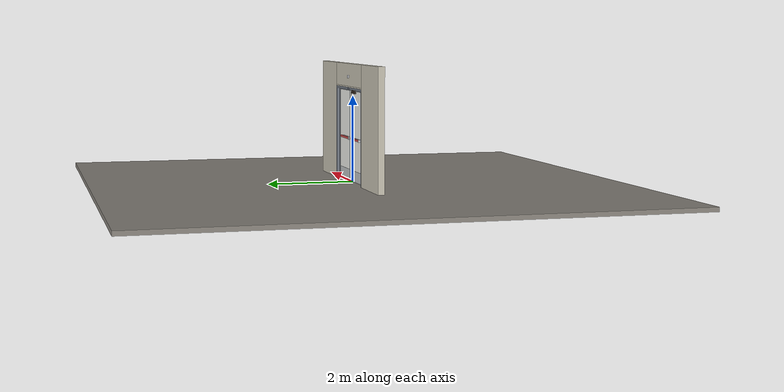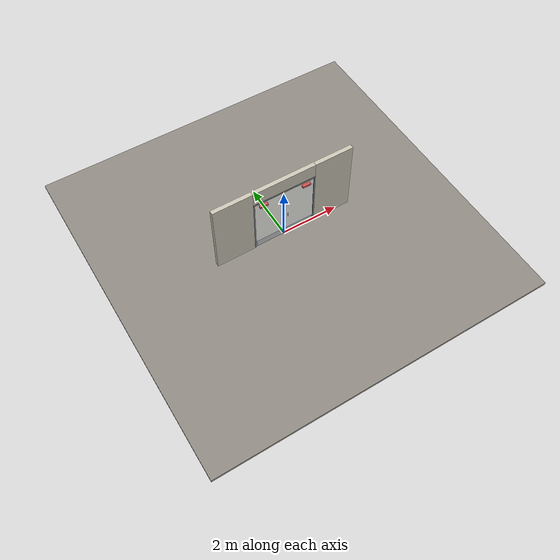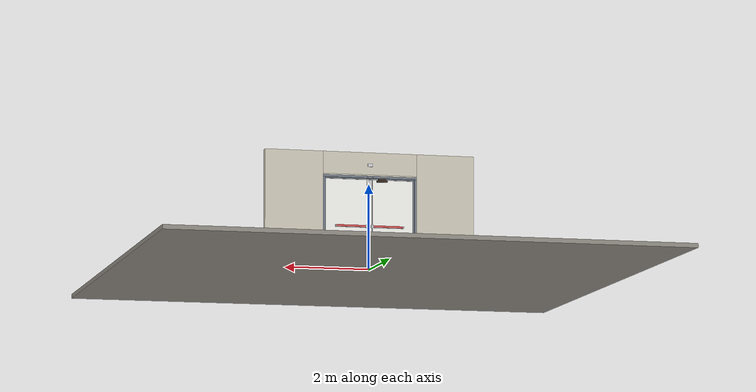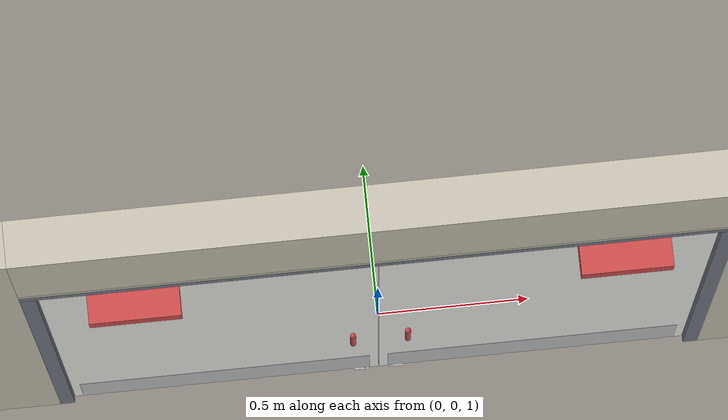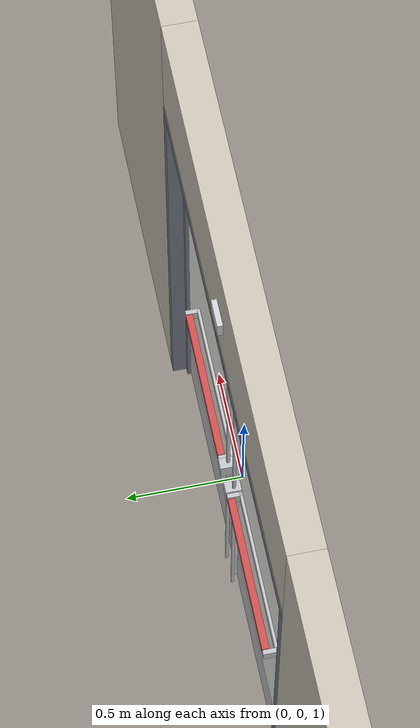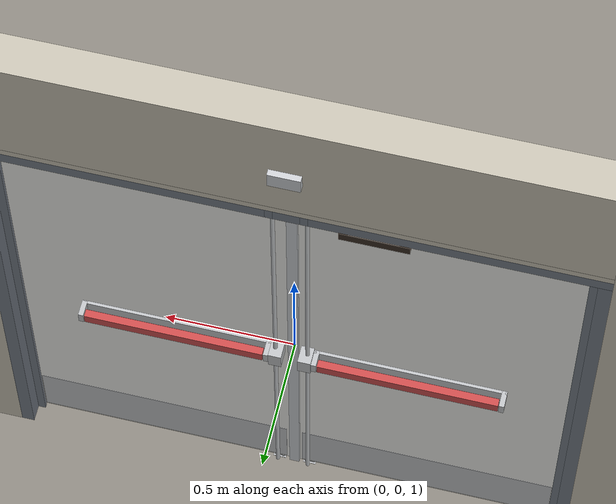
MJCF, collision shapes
<?xml version="1.0" ?>
<mujoco model="db0183_swing_double_full">
  <compiler angle="radian" meshdir="../../hardware" texturedir="../../textures" autolimits="true" inertiafromgeom="false"/>
  <option timestep="0.002" integrator="implicitfast" cone="elliptic" impratio="10" noslip_iterations="3">
    <flag multiccd="enable"/>
  </option>
  <size memory="16M"/>
  <default>
    <geom condim="4" solref="0.005 1" solimp="0.95 0.99 0.001"/>
    <joint solreflimit="0.005 1" solimplimit="0.95 0.99 0.001"/>
    <tendon solreflimit="0.005 1"/>
    <equality solref="0.002 1"/>
  </default>
  <visual>
    <headlight ambient="0.4 0.4 0.4" diffuse="0.7 0.7 0.7" specular="0.2 0.2 0.2"/>
    <quality shadowsize="4096"/>
    <map znear="0.01" zfar="60"/>
  </visual>
  <asset>
    <mesh name="closer_body_fdc4667657" file="closer_body_fdc4667657.obj"/>
    <mesh name="exit_sign_a6449bfa2c" file="exit_sign_a6449bfa2c.obj"/>
    <mesh name="hinge_e22b26c0c1" file="hinge_e22b26c0c1.obj"/>
    <mesh name="hinge_jamb_e1d088f8dc" file="hinge_jamb_e1d088f8dc.obj"/>
    <mesh name="pull_1e5d69a91a" file="pull_1e5d69a91a.obj"/>
    <mesh name="touchbar_pad_53c3bea3f4" file="touchbar_pad_53c3bea3f4.obj"/>
    <material name="mat_floor" rgba="0.55 0.53 0.5 1" specular="0.2" shininess="0.15" reflectance="0"/>
    <material name="mat_wall" rgba="0.78 0.76 0.7 1" specular="0.2" shininess="0.1" reflectance="0"/>
    <material name="mat_leaf_a" rgba="0.93 0.93 0.91 1" specular="0.2" shininess="0.35" reflectance="0"/>
    <material name="mat_hinge" rgba="0.65 0.66 0.68 1" specular="0.74" shininess="0.5" reflectance="0.36"/>
    <material name="mat_op_stainless" rgba="0.75 0.76 0.77 1" specular="0.8" shininess="0.65" reflectance="0.4"/>
    <material name="mat_bolt" rgba="0.75 0.76 0.77 1" specular="0.8" shininess="0.65" reflectance="0.4"/>
    <material name="mat_maglock" rgba="0.22 0.17 0.13 1" specular="0.8" shininess="0.6" reflectance="0.4"/>
    <material name="mat_closer" rgba="0.22 0.17 0.13 1" specular="0.8" shininess="0.6" reflectance="0.4"/>
    <material name="mat_kick" rgba="0.75 0.76 0.77 1" specular="0.8" shininess="0.65" reflectance="0.4"/>
    <material name="mat_exit_sign" rgba="0.85 0.1 0.1 1" specular="0.2" shininess="0.6" reflectance="0"/>
    <material name="mat_sign_bracket" rgba="0.8 0.81 0.83 1" specular="0.8" shininess="0.6" reflectance="0.4"/>
    <material name="mat_leaf_b" rgba="0.93 0.93 0.91 1" specular="0.2" shininess="0.35" reflectance="0"/>
    <material name="mat_frame" rgba="0.45 0.48 0.52 1" specular="0.32" shininess="0.6" reflectance="0.08"/>
    <material name="mat_astragal" rgba="0.8 0.81 0.83 1" specular="0.8" shininess="0.6" reflectance="0.4"/>
    <texture name="skybox" type="skybox" builtin="gradient" rgb1="0.6 0.7 0.85" rgb2="0.9 0.92 0.95" width="256" height="256"/>
  </asset>
  <worldbody>
    <light name="sun" pos="1.5 -2.5 4" dir="-0.3 0.5 -0.8" directional="true" diffuse="0.8 0.8 0.8" specular="0.3 0.3 0.3" castshadow="true"/>
    <light name="fill" pos="-1.5 2.5 3" dir="0.3 -0.5 -0.7" directional="true" diffuse="0.35 0.35 0.4" castshadow="false"/>
    <camera name="robot_view" pos="0 -2.607312 1.812087" xyaxes="1 0 0 0 0.26963 0.962964" fovy="52"/>
    <camera name="far_view" pos="0 2.668312 1.812087" xyaxes="-1 0 0 0 -0.26963 0.962964" fovy="52"/>
    <camera name="iso" pos="-2.004737 -2.185262 2.234138" xyaxes="0.741536 -0.670913 0 0.242917 0.268487 0.932151" fovy="46"/>
    <camera name="detail_handle" pos="0.0885 -0.882 1.296" xyaxes="0.97561 0.219512 0 -0.070934 0.315262 0.94635" fovy="38"/>
    <geom name="floor" type="box" size="6 6 0.05" pos="0 0 -0.05" material="mat_floor" group="0" contype="1" conaffinity="1" friction="0.8 0.005 0.0001" density="2400"/>
    <geom name="wall_left" type="box" size="0.68925 0.0725 1.3735" pos="-1.81075 0.0305 1.3735" material="mat_wall" group="0" contype="1" conaffinity="1" friction="0.6 0.005 0.0001" density="800"/>
    <geom name="wall_right" type="box" size="0.68925 0.0725 1.3735" pos="1.81075 0.0305 1.3735" material="mat_wall" group="0" contype="1" conaffinity="1" friction="0.6 0.005 0.0001" density="800"/>
    <geom name="wall_header" type="box" size="1.1215 0.0725 0.26" pos="0 0.0305 2.487" material="mat_wall" group="0" contype="1" conaffinity="1" friction="0.6 0.005 0.0001" density="800"/>
    <geom name="hinge_0_jamb" type="mesh" mesh="hinge_jamb_e1d088f8dc" pos="-1.0685 -0.029 0.266" material="mat_hinge" group="1" contype="0" conaffinity="0" density="7850"/>
    <geom name="hinge_1_jamb" type="mesh" mesh="hinge_jamb_e1d088f8dc" pos="-1.0685 -0.029 1.0795" material="mat_hinge" group="1" contype="0" conaffinity="0" density="7850"/>
    <geom name="hinge_2_jamb" type="mesh" mesh="hinge_jamb_e1d088f8dc" pos="-1.0685 -0.029 1.963" material="mat_hinge" group="1" contype="0" conaffinity="0" density="7850"/>
    <geom name="leaf_a_bottom_strike_plate" type="box" size="0.0255 0.0255 0.00075" pos="-0.0615 0 0.00075" material="mat_bolt" group="0" contype="1" conaffinity="1" friction="0.6 0.005 0.0001" density="7850"/>
    <geom name="leaf_a_bottom_strike_p" type="box" size="0.0215 0.004 0.00575" pos="-0.0615 0.0145 0.00725" material="mat_bolt" group="0" contype="1" conaffinity="1" friction="0.6 0.005 0.0001" density="7850"/>
    <geom name="leaf_a_bottom_strike_n" type="box" size="0.0215 0.004 0.00575" pos="-0.0615 -0.0145 0.00725" material="mat_bolt" group="0" contype="1" conaffinity="1" friction="0.6 0.005 0.0001" density="7850"/>
    <geom name="leaf_a_bottom_strike_e" type="box" size="0.004 0.0215 0.00575" pos="-0.047 0 0.00725" material="mat_bolt" group="0" contype="1" conaffinity="1" friction="0.6 0.005 0.0001" density="7850"/>
    <geom name="leaf_a_maglock_body" type="box" size="0.125 0.025 0.02" pos="-0.3015 0.057 2.082" material="mat_maglock" group="0" contype="1" conaffinity="1" friction="0.6 0.005 0.0001" density="2000"/>
    <geom name="leaf_a_maglock_bracket" type="box" size="0.09 0.025 0.0225" pos="-0.3015 0.057 2.1245" material="mat_maglock" group="1" contype="0" conaffinity="0" density="7850"/>
    <geom name="exit_sign" type="mesh" mesh="exit_sign_a6449bfa2c" pos="0 0.15 2.447" material="mat_exit_sign" group="2" contype="0" conaffinity="0" density="500"/>
    <geom name="exit_sign_bracket" type="box" size="0.05775 0.0115 0.035" pos="0 0.114 2.447" material="mat_sign_bracket" group="2" contype="0" conaffinity="0" density="7850"/>
    <geom name="hinge_0_jamb_2" type="mesh" mesh="hinge_jamb_e1d088f8dc" pos="1.0685 -0.029 0.266" quat="0 0 1 0" material="mat_hinge" group="1" contype="0" conaffinity="0" density="7850"/>
    <geom name="hinge_1_jamb_2" type="mesh" mesh="hinge_jamb_e1d088f8dc" pos="1.0685 -0.029 1.0795" quat="0 0 1 0" material="mat_hinge" group="1" contype="0" conaffinity="0" density="7850"/>
    <geom name="hinge_2_jamb_2" type="mesh" mesh="hinge_jamb_e1d088f8dc" pos="1.0685 -0.029 1.963" quat="0 0 1 0" material="mat_hinge" group="1" contype="0" conaffinity="0" density="7850"/>
    <geom name="leaf_b_bottom_strike_plate" type="box" size="0.0255 0.0255 0.00075" pos="0.0615 0 0.00075" material="mat_bolt" group="0" contype="1" conaffinity="1" friction="0.6 0.005 0.0001" density="7850"/>
    <geom name="leaf_b_bottom_strike_p" type="box" size="0.0215 0.004 0.00575" pos="0.0615 0.0145 0.00725" material="mat_bolt" group="0" contype="1" conaffinity="1" friction="0.6 0.005 0.0001" density="7850"/>
    <geom name="leaf_b_bottom_strike_n" type="box" size="0.0215 0.004 0.00575" pos="0.0615 -0.0145 0.00725" material="mat_bolt" group="0" contype="1" conaffinity="1" friction="0.6 0.005 0.0001" density="7850"/>
    <geom name="leaf_b_bottom_strike_e" type="box" size="0.004 0.0215 0.00575" pos="0.047 0 0.00725" material="mat_bolt" group="0" contype="1" conaffinity="1" friction="0.6 0.005 0.0001" density="7850"/>
    <geom name="jamb_l" type="box" size="0.025 0.0725 1.0735" pos="-1.0965 0.0305 1.0735" material="mat_frame" group="0" contype="1" conaffinity="1" friction="0.6 0.005 0.0001" density="300"/>
    <geom name="jamb_r" type="box" size="0.025 0.0725 1.0735" pos="1.0965 0.0305 1.0735" material="mat_frame" group="0" contype="1" conaffinity="1" friction="0.6 0.005 0.0001" density="300"/>
    <geom name="jamb_head_pwall_-61_n" type="box" size="0.0135 0.0155 0.025" pos="-0.0615 -0.0265 2.172" material="mat_frame" group="0" contype="1" conaffinity="1" friction="0.6 0.005 0.0001" density="300"/>
    <geom name="jamb_head_pwall_-61_p" type="box" size="0.0135 0.046 0.025" pos="-0.0615 0.057 2.172" material="mat_frame" group="0" contype="1" conaffinity="1" friction="0.6 0.005 0.0001" density="300"/>
    <geom name="jamb_head_pback_-61" type="box" size="0.0135 0.011 0.0135" pos="-0.0615 0 2.1835" material="mat_frame" group="0" contype="1" conaffinity="1" friction="0.6 0.005 0.0001" density="300"/>
    <geom name="jamb_head_pwall_61_n" type="box" size="0.0135 0.0155 0.025" pos="0.0615 -0.0265 2.172" material="mat_frame" group="0" contype="1" conaffinity="1" friction="0.6 0.005 0.0001" density="300"/>
    <geom name="jamb_head_pwall_61_p" type="box" size="0.0135 0.046 0.025" pos="0.0615 0.057 2.172" material="mat_frame" group="0" contype="1" conaffinity="1" friction="0.6 0.005 0.0001" density="300"/>
    <geom name="jamb_head_pback_61" type="box" size="0.0135 0.011 0.0135" pos="0.0615 0 2.1835" material="mat_frame" group="0" contype="1" conaffinity="1" friction="0.6 0.005 0.0001" density="300"/>
    <geom name="jamb_head_0" type="box" size="0.52325 0.0725 0.025" pos="-0.59825 0.0305 2.172" material="mat_frame" group="0" contype="1" conaffinity="1" friction="0.6 0.005 0.0001" density="300"/>
    <geom name="jamb_head_1" type="box" size="0.048 0.0725 0.025" pos="0 0.0305 2.172" material="mat_frame" group="0" contype="1" conaffinity="1" friction="0.6 0.005 0.0001" density="300"/>
    <geom name="jamb_head_2" type="box" size="0.52325 0.0725 0.025" pos="0.59825 0.0305 2.172" material="mat_frame" group="0" contype="1" conaffinity="1" friction="0.6 0.005 0.0001" density="300"/>
    <geom name="head_stud" type="box" size="1.1215 0.0725 0.015" pos="0 0.0305 2.212" material="mat_wall" group="0" contype="1" conaffinity="1" friction="0.6 0.005 0.0001" density="500"/>
    <geom name="stop_l" type="box" size="0.015 0.008 1.0735" pos="-1.0565 0.0305 1.0735" material="mat_frame" group="0" contype="1" conaffinity="1" friction="0.6 0.005 0.0001" density="300"/>
    <geom name="stop_r" type="box" size="0.015 0.008 1.0735" pos="1.0565 0.0305 1.0735" material="mat_frame" group="0" contype="1" conaffinity="1" friction="0.6 0.005 0.0001" density="300"/>
    <geom name="stop_head" type="box" size="1.0715 0.008 0.015" pos="0 0.0305 2.132" material="mat_frame" group="0" contype="1" conaffinity="1" friction="0.6 0.005 0.0001" density="300"/>
    <site name="approach_point" pos="0 -1.5 0" quat="1 0 0 0" size="0.05" rgba="0.2 0.9 0.2 0.5" group="4"/>
    <site name="goal_point" pos="0 1.5 0" quat="1 0 0 0" size="0.05" rgba="0.2 0.9 0.2 0.5" group="4"/>
    <site name="door_plane_center" pos="0 0 1.0735" quat="1 0 0 0" size="0.02" rgba="0.2 0.9 0.2 0.5" group="4"/>
    <site name="approach_point_2" pos="0 -1.5 0" quat="1 0 0 0" size="0.05" rgba="0.2 0.9 0.2 0.5" group="4"/>
    <site name="goal_point_2" pos="0 1.5 0" quat="1 0 0 0" size="0.05" rgba="0.2 0.9 0.2 0.5" group="4"/>
    <site name="door_plane_center_2" pos="0 0 1.0735" quat="1 0 0 0" size="0.02" rgba="0.2 0.9 0.2 0.5" group="4"/>
    <site name="approach_point_3" pos="0 -1.5 0" quat="1 0 0 0" size="0.05" rgba="0.2 0.9 0.2 0.5" group="4"/>
    <site name="goal_point_3" pos="0 1.5 0" quat="1 0 0 0" size="0.05" rgba="0.2 0.9 0.2 0.5" group="4"/>
    <site name="door_plane_center_3" pos="0 0 1.0735" quat="1 0 0 0" size="0.02" rgba="0.2 0.9 0.2 0.5" group="4"/>
    <body name="leaf_a" pos="-1.0715 0 0">
      <inertial pos="0.518158 -0.009915 1.184296" mass="56.438035" quat="-0.489711 0.462131 0.525788 0.519774" diaginertia="5.262560014 28.173270011 33.327995523"/>
      <joint name="leaf_a_hinge" type="hinge" axis="0 0 -1" pos="0.003 -0.029 0" limited="true" range="0 1.570796" solreflimit="0.02 1" damping="12.49954" frictionloss="3.958534" stiffness="13.190762" springref="-2.424424" armature="0.02"/>
      <geom name="leaf_a_slab" type="box" size="0.5335 0.022 1.0635" pos="0.5365 0 1.0795" material="mat_leaf_a" group="0" contype="1" conaffinity="1" friction="0.4 0.005 0.0001" density="1"/>
      <geom name="hinge_0" type="mesh" mesh="hinge_e22b26c0c1" pos="0.003 -0.029 0.266" material="mat_hinge" group="1" contype="0" conaffinity="0" density="7850"/>
      <geom name="hinge_1" type="mesh" mesh="hinge_e22b26c0c1" pos="0.003 -0.029 1.0795" material="mat_hinge" group="1" contype="0" conaffinity="0" density="7850"/>
      <geom name="hinge_2" type="mesh" mesh="hinge_e22b26c0c1" pos="0.003 -0.029 1.963" material="mat_hinge" group="1" contype="0" conaffinity="0" density="7850"/>
      <geom name="leaf_a_exit_device_rail" type="box" size="0.366775 0.006 0.025" pos="0.623225 0.028 1.016" material="mat_op_stainless" group="0" contype="1" conaffinity="1" friction="0.6 0.005 0.0001" density="3000"/>
      <geom name="leaf_a_exit_device_rail_end_n" type="box" size="0.01 0.0325 0.025" pos="0.26645 0.0545 1.016" material="mat_op_stainless" group="0" contype="1" conaffinity="1" friction="0.6 0.005 0.0001" density="3000"/>
      <geom name="leaf_a_exit_device_rail_end_p" type="box" size="0.01 0.0325 0.025" pos="0.98 0.0545 1.016" material="mat_op_stainless" group="0" contype="1" conaffinity="1" friction="0.6 0.005 0.0001" density="3000"/>
      <geom name="leaf_a_exit_device_case" type="box" size="0.025 0.034125 0.0375" pos="1.015 0.056125 1.016" material="mat_op_stainless" group="0" contype="1" conaffinity="1" friction="0.6 0.005 0.0001" density="3000"/>
      <geom name="leaf_a_exit_device_rod_top" type="cylinder" size="0.008 0.52975" pos="1.01 0.052 1.58325" material="mat_op_stainless" group="1" contype="0" conaffinity="0" density="7850"/>
      <geom name="leaf_a_exit_device_rod_bot" type="cylinder" size="0.008 0.46625" pos="1.01 0.052 0.51225" material="mat_op_stainless" group="1" contype="0" conaffinity="0" density="7850"/>
      <geom name="leaf_a_far_pull_n" type="mesh" mesh="pull_1e5d69a91a" pos="0.98 -0.022 1.016" quat="0.707107 0.707107 0 0" material="mat_op_stainless" group="1" contype="0" conaffinity="0" density="3000"/>
      <geom name="leaf_a_far_pull_col_n" type="capsule" size="0.0095 0.08" pos="0.98 -0.082 1.016" material="mat_op_stainless" group="3" contype="1" conaffinity="1" rgba="0.8 0.3 0.3 0.25" friction="0.7 0.01 0.0001" density="3000"/>
      <geom name="leaf_a_maglock_armature" type="box" size="0.09 0.005 0.02" pos="0.77 0.027 2.082" material="mat_maglock" group="1" contype="0" conaffinity="0" density="7800"/>
      <geom name="closer_body" type="mesh" mesh="closer_body_fdc4667657" pos="0.3 -0.022 2.047" quat="0.707107 0.707107 0 0" material="mat_closer" group="1" contype="0" conaffinity="0" density="2000"/>
      <geom name="closer_body_col" type="box" size="0.145 0.05 0.035" pos="0.3 -0.072 2.047" material="mat_closer" group="3" contype="1" conaffinity="1" rgba="0.8 0.3 0.3 0.25" friction="0.6 0.005 0.0001" density="2000"/>
      <geom name="kick_plate_n" type="box" size="0.5035 0.0008 0.125" pos="0.5365 -0.0228 0.151" material="mat_kick" group="2" contype="0" conaffinity="0" density="7900"/>
      <geom name="kick_plate_p" type="box" size="0.5035 0.0008 0.125" pos="0.5365 0.0228 0.151" material="mat_kick" group="2" contype="0" conaffinity="0" density="7900"/>
      <site name="leaf_a_far_pull_grip_n" pos="0.98 -0.082 1.016" quat="1 0 0 0" size="0.012" rgba="0.2 0.9 0.2 0.5" group="4"/>
      <site name="leaf_a_edge_mid" pos="1.07 0 1.0635" quat="1 0 0 0" size="0.02" rgba="0.2 0.9 0.2 0.5" group="4"/>
      <body name="leaf_a_exit_device" pos="0.623225 0.022 1.016">
        <inertial pos="0 0.05 0" mass="5.569155" quat="0.707107 -0.707107 0 0" diaginertia="0.001357482 0.219807588 0.220329696"/>
        <joint name="leaf_a_exit_device_slide" type="slide" axis="0 -1 0" limited="true" range="0 0.016" damping="178.961638" frictionloss="0.5" stiffness="1400" springref="-0.015714" armature="0.15"/>
        <geom name="leaf_a_exit_device_pad" type="mesh" mesh="touchbar_pad_53c3bea3f4" pos="0 0 0" quat="-0.707107 0.707107 0 0" material="mat_op_stainless" group="1" contype="0" conaffinity="0" density="3000"/>
        <geom name="leaf_a_exit_device_pad_col" type="box" size="0.343775 0.015 0.0225" pos="0 0.05 0" material="mat_op_stainless" group="3" contype="1" conaffinity="1" rgba="0.8 0.3 0.3 0.25" friction="0.8 0.01 0.0001" density="3000"/>
        <site name="leaf_a_exit_device_push" pos="0 0.065 0" quat="1 0 0 0" size="0.015" rgba="0.2 0.9 0.2 0.5" group="4"/>
      </body>
      <body name="leaf_a_top_latch" pos="1.01 0 2.143">
        <inertial pos="0 0 -0.0155" mass="0.151026" quat="0.707107 0 0.707107 0" diaginertia="0.00000654 0.000053442 0.000053442"/>
        <joint name="leaf_a_top_latch_slide" type="slide" axis="0 0 -1" limited="true" range="0 0.019" damping="2" frictionloss="0.3" stiffness="800" springref="-0.01" armature="0.1"/>
        <geom name="leaf_a_top_latch_capsule" type="capsule" size="0.0095 0.025" pos="0 0 -0.0155" material="mat_bolt" group="0" contype="1" conaffinity="1" friction="0.2 0.005 0.0001" density="8500"/>
      </body>
      <body name="leaf_a_bottom_latch" pos="1.01 0 0.03">
        <inertial pos="0 0 0.012" mass="0.167896" quat="0.707107 0 0.707107 0" diaginertia="0.000007301 0.000072388 0.000072388"/>
        <joint name="leaf_a_bottom_latch_slide" type="slide" axis="0 0 1" limited="true" range="0 0.026" damping="2" frictionloss="0.3" stiffness="800" springref="-0.01" armature="0.1"/>
        <geom name="leaf_a_bottom_latch_capsule" type="capsule" size="0.0095 0.0285" pos="0 0 0.012" material="mat_bolt" group="0" contype="1" conaffinity="1" friction="0.2 0.005 0.0001" density="8500"/>
      </body>
    </body>
    <body name="leaf_b" pos="1.0715 0 0">
      <inertial pos="-0.539924 -0.008475 1.173488" mass="57.091438" quat="0.521465 -0.529033 -0.458512 -0.487816" diaginertia="5.782461712 28.136364921 33.812957921"/>
      <joint name="leaf_b_hinge" type="hinge" axis="0 0 1" pos="-0.003 -0.029 0" limited="true" range="0 1.570796" solreflimit="0.02 1" damping="12.49954" frictionloss="3.958534" stiffness="13.190762" springref="-2.424424" armature="0.02"/>
      <geom name="leaf_b_slab" type="box" size="0.5335 0.022 1.0635" pos="-0.5365 0 1.0795" material="mat_leaf_b" group="0" contype="1" conaffinity="1" friction="0.4 0.005 0.0001" density="1"/>
      <geom name="hinge_0_2" type="mesh" mesh="hinge_e22b26c0c1" pos="-0.003 -0.029 0.266" quat="0 0 1 0" material="mat_hinge" group="1" contype="0" conaffinity="0" density="7850"/>
      <geom name="hinge_1_2" type="mesh" mesh="hinge_e22b26c0c1" pos="-0.003 -0.029 1.0795" quat="0 0 1 0" material="mat_hinge" group="1" contype="0" conaffinity="0" density="7850"/>
      <geom name="hinge_2_2" type="mesh" mesh="hinge_e22b26c0c1" pos="-0.003 -0.029 1.963" quat="0 0 1 0" material="mat_hinge" group="1" contype="0" conaffinity="0" density="7850"/>
      <geom name="leaf_b_exit_device_rail" type="box" size="0.366775 0.006 0.025" pos="-0.623225 0.028 1.016" material="mat_op_stainless" group="0" contype="1" conaffinity="1" friction="0.6 0.005 0.0001" density="3000"/>
      <geom name="leaf_b_exit_device_rail_end_n" type="box" size="0.01 0.0325 0.025" pos="-0.98 0.0545 1.016" material="mat_op_stainless" group="0" contype="1" conaffinity="1" friction="0.6 0.005 0.0001" density="3000"/>
      <geom name="leaf_b_exit_device_rail_end_p" type="box" size="0.01 0.0325 0.025" pos="-0.26645 0.0545 1.016" material="mat_op_stainless" group="0" contype="1" conaffinity="1" friction="0.6 0.005 0.0001" density="3000"/>
      <geom name="leaf_b_exit_device_case" type="box" size="0.025 0.034125 0.0375" pos="-1.015 0.056125 1.016" material="mat_op_stainless" group="0" contype="1" conaffinity="1" friction="0.6 0.005 0.0001" density="3000"/>
      <geom name="leaf_b_exit_device_rod_top" type="cylinder" size="0.008 0.52975" pos="-1.01 0.052 1.58325" material="mat_op_stainless" group="1" contype="0" conaffinity="0" density="7850"/>
      <geom name="leaf_b_exit_device_rod_bot" type="cylinder" size="0.008 0.46625" pos="-1.01 0.052 0.51225" material="mat_op_stainless" group="1" contype="0" conaffinity="0" density="7850"/>
      <geom name="leaf_b_far_pull_n" type="mesh" mesh="pull_1e5d69a91a" pos="-0.98 -0.022 1.016" quat="0 0 -0.707107 0.707107" material="mat_op_stainless" group="1" contype="0" conaffinity="0" density="3000"/>
      <geom name="leaf_b_far_pull_col_n" type="capsule" size="0.0095 0.08" pos="-0.98 -0.082 1.016" material="mat_op_stainless" group="3" contype="1" conaffinity="1" rgba="0.8 0.3 0.3 0.25" friction="0.7 0.01 0.0001" density="3000"/>
      <geom name="closer_body_2" type="mesh" mesh="closer_body_fdc4667657" pos="-0.3 -0.022 2.047" quat="0 0 -0.707107 0.707107" material="mat_closer" group="1" contype="0" conaffinity="0" density="2000"/>
      <geom name="closer_body_col_2" type="box" size="0.145 0.05 0.035" pos="-0.3 -0.072 2.047" material="mat_closer" group="3" contype="1" conaffinity="1" rgba="0.8 0.3 0.3 0.25" friction="0.6 0.005 0.0001" density="2000"/>
      <geom name="kick_plate_n_2" type="box" size="0.5035 0.0008 0.125" pos="-0.5365 -0.0228 0.151" material="mat_kick" group="2" contype="0" conaffinity="0" density="7900"/>
      <geom name="kick_plate_p_2" type="box" size="0.5035 0.0008 0.125" pos="-0.5365 0.0228 0.151" material="mat_kick" group="2" contype="0" conaffinity="0" density="7900"/>
      <geom name="astragal" type="box" size="0.02 0.008 1.047" pos="-1.074 0.03 1.067" material="mat_astragal" group="0" contype="1" conaffinity="1" friction="0.6 0.005 0.0001" density="2700"/>
      <site name="leaf_b_far_pull_grip_n" pos="-0.98 -0.082 1.016" quat="1 0 0 0" size="0.012" rgba="0.2 0.9 0.2 0.5" group="4"/>
      <site name="leaf_b_edge_mid" pos="-1.07 0 1.0635" quat="1 0 0 0" size="0.02" rgba="0.2 0.9 0.2 0.5" group="4"/>
      <body name="leaf_b_exit_device" pos="-0.623225 0.022 1.016">
        <inertial pos="0 0.05 0" mass="5.569155" quat="0 0 0.707107 0.707107" diaginertia="0.001357482 0.219807588 0.220329696"/>
        <joint name="leaf_b_exit_device_slide" type="slide" axis="0 -1 0" limited="true" range="0 0.016" damping="178.961638" frictionloss="0.5" stiffness="1400" springref="-0.015714" armature="0.15"/>
        <geom name="leaf_b_exit_device_pad" type="mesh" mesh="touchbar_pad_53c3bea3f4" pos="0 0 0" quat="0 0 0.707107 0.707107" material="mat_op_stainless" group="1" contype="0" conaffinity="0" density="3000"/>
        <geom name="leaf_b_exit_device_pad_col" type="box" size="0.343775 0.015 0.0225" pos="0 0.05 0" material="mat_op_stainless" group="3" contype="1" conaffinity="1" rgba="0.8 0.3 0.3 0.25" friction="0.8 0.01 0.0001" density="3000"/>
        <site name="leaf_b_exit_device_push" pos="0 0.065 0" quat="1 0 0 0" size="0.015" rgba="0.2 0.9 0.2 0.5" group="4"/>
      </body>
      <body name="leaf_b_top_latch" pos="-1.01 0 2.143">
        <inertial pos="0 0 -0.0155" mass="0.151026" quat="0.707107 0 0.707107 0" diaginertia="0.00000654 0.000053442 0.000053442"/>
        <joint name="leaf_b_top_latch_slide" type="slide" axis="0 0 -1" limited="true" range="0 0.019" damping="2" frictionloss="0.3" stiffness="800" springref="-0.01" armature="0.1"/>
        <geom name="leaf_b_top_latch_capsule" type="capsule" size="0.0095 0.025" pos="0 0 -0.0155" material="mat_bolt" group="0" contype="1" conaffinity="1" friction="0.2 0.005 0.0001" density="8500"/>
      </body>
      <body name="leaf_b_bottom_latch" pos="-1.01 0 0.03">
        <inertial pos="0 0 0.012" mass="0.167896" quat="0.707107 0 0.707107 0" diaginertia="0.000007301 0.000072388 0.000072388"/>
        <joint name="leaf_b_bottom_latch_slide" type="slide" axis="0 0 1" limited="true" range="0 0.026" damping="2" frictionloss="0.3" stiffness="800" springref="-0.01" armature="0.1"/>
        <geom name="leaf_b_bottom_latch_capsule" type="capsule" size="0.0095 0.0285" pos="0 0 0.012" material="mat_bolt" group="0" contype="1" conaffinity="1" friction="0.2 0.005 0.0001" density="8500"/>
      </body>
    </body>
  </worldbody>
  <tendon>
    <fixed name="leaf_a_top_latch_coupling" limited="true" range="0 10">
      <joint joint="leaf_a_top_latch_slide" coef="1"/>
      <joint joint="leaf_a_exit_device_slide" coef="-1.142857"/>
    </fixed>
    <fixed name="leaf_a_bottom_latch_coupling" limited="true" range="0 10">
      <joint joint="leaf_a_bottom_latch_slide" coef="1"/>
      <joint joint="leaf_a_exit_device_slide" coef="-1.56391"/>
    </fixed>
    <fixed name="leaf_b_top_latch_coupling" limited="true" range="0 10">
      <joint joint="leaf_b_top_latch_slide" coef="1"/>
      <joint joint="leaf_b_exit_device_slide" coef="-1.142857"/>
    </fixed>
    <fixed name="leaf_b_bottom_latch_coupling" limited="true" range="0 10">
      <joint joint="leaf_b_bottom_latch_slide" coef="1"/>
      <joint joint="leaf_b_exit_device_slide" coef="-1.56391"/>
    </fixed>
  </tendon>
  <equality>
    <weld name="leaf_a_maglock" body1="leaf_a" body2="world" active="true"/>
  </equality>
  <sensor>
    <jointpos name="leaf_a_hinge_pos" joint="leaf_a_hinge"/>
    <jointvel name="leaf_a_hinge_vel" joint="leaf_a_hinge"/>
    <jointpos name="leaf_a_exit_device_slide_pos" joint="leaf_a_exit_device_slide"/>
    <jointvel name="leaf_a_exit_device_slide_vel" joint="leaf_a_exit_device_slide"/>
    <jointpos name="leaf_a_top_latch_slide_pos" joint="leaf_a_top_latch_slide"/>
    <jointvel name="leaf_a_top_latch_slide_vel" joint="leaf_a_top_latch_slide"/>
    <jointpos name="leaf_a_bottom_latch_slide_pos" joint="leaf_a_bottom_latch_slide"/>
    <jointvel name="leaf_a_bottom_latch_slide_vel" joint="leaf_a_bottom_latch_slide"/>
    <jointpos name="leaf_b_hinge_pos" joint="leaf_b_hinge"/>
    <jointvel name="leaf_b_hinge_vel" joint="leaf_b_hinge"/>
    <jointpos name="leaf_b_exit_device_slide_pos" joint="leaf_b_exit_device_slide"/>
    <jointvel name="leaf_b_exit_device_slide_vel" joint="leaf_b_exit_device_slide"/>
    <jointpos name="leaf_b_top_latch_slide_pos" joint="leaf_b_top_latch_slide"/>
    <jointvel name="leaf_b_top_latch_slide_vel" joint="leaf_b_top_latch_slide"/>
    <jointpos name="leaf_b_bottom_latch_slide_pos" joint="leaf_b_bottom_latch_slide"/>
    <jointvel name="leaf_b_bottom_latch_slide_vel" joint="leaf_b_bottom_latch_slide"/>
  </sensor>
</mujoco>
